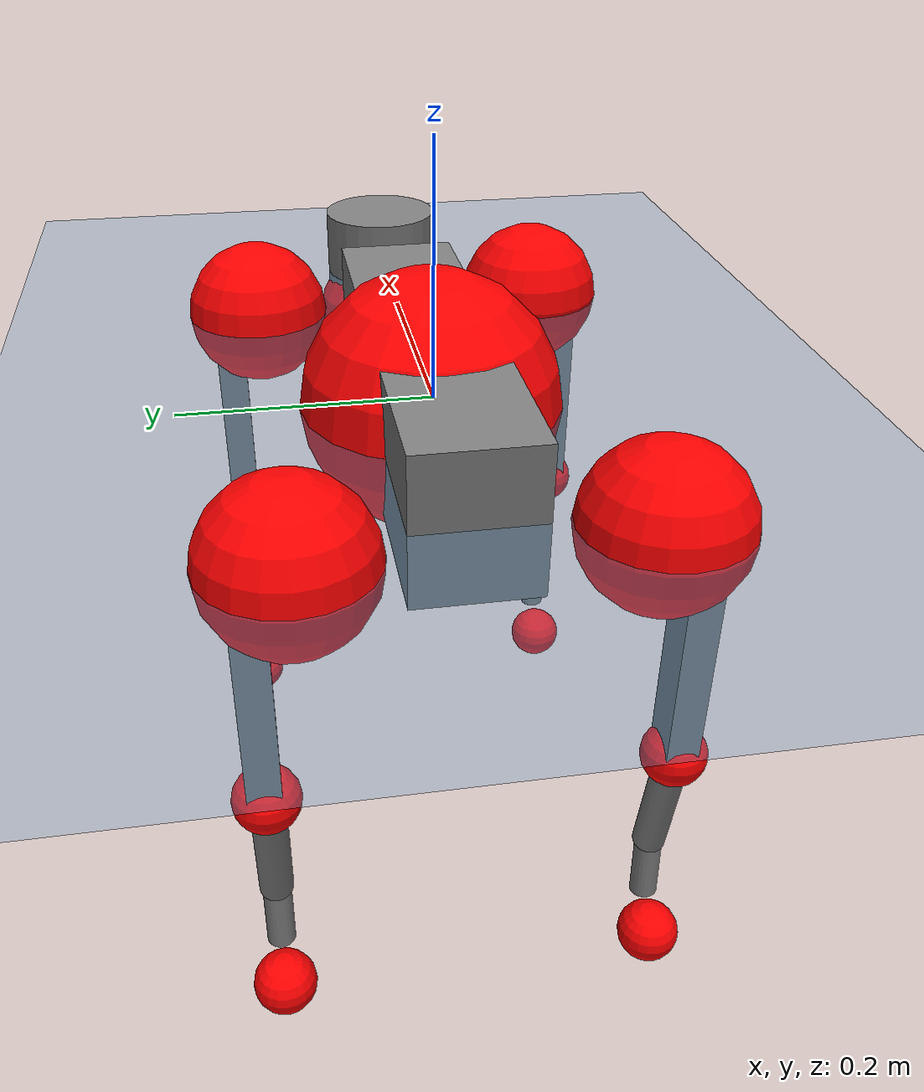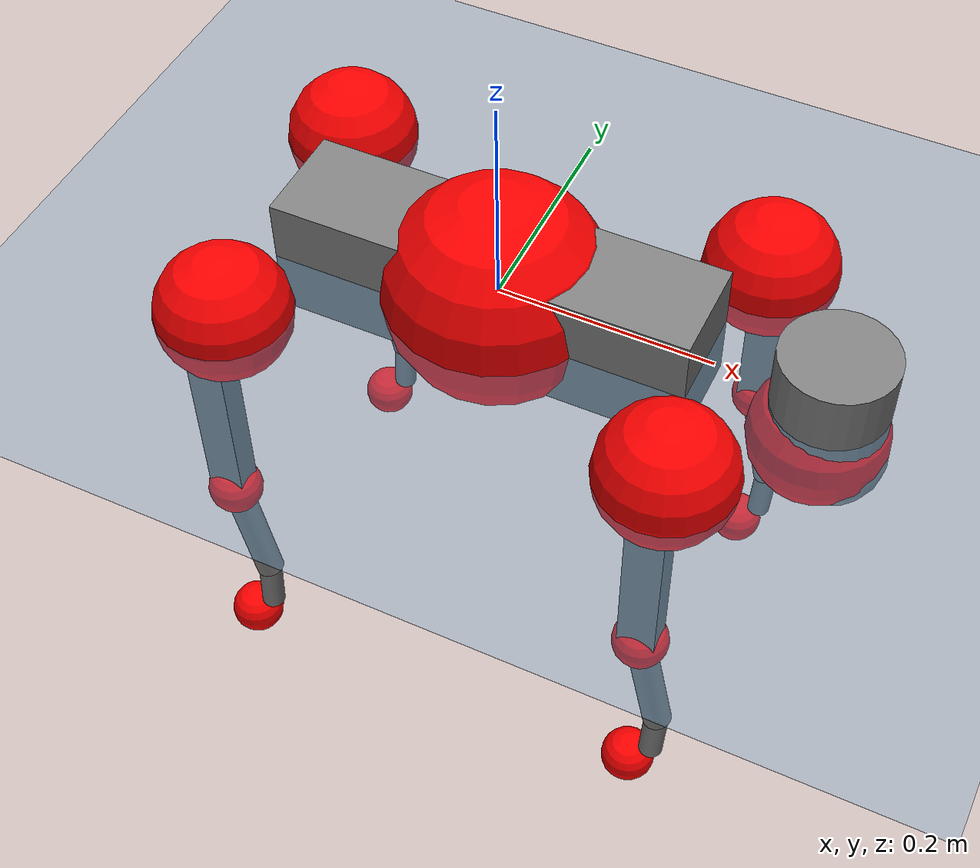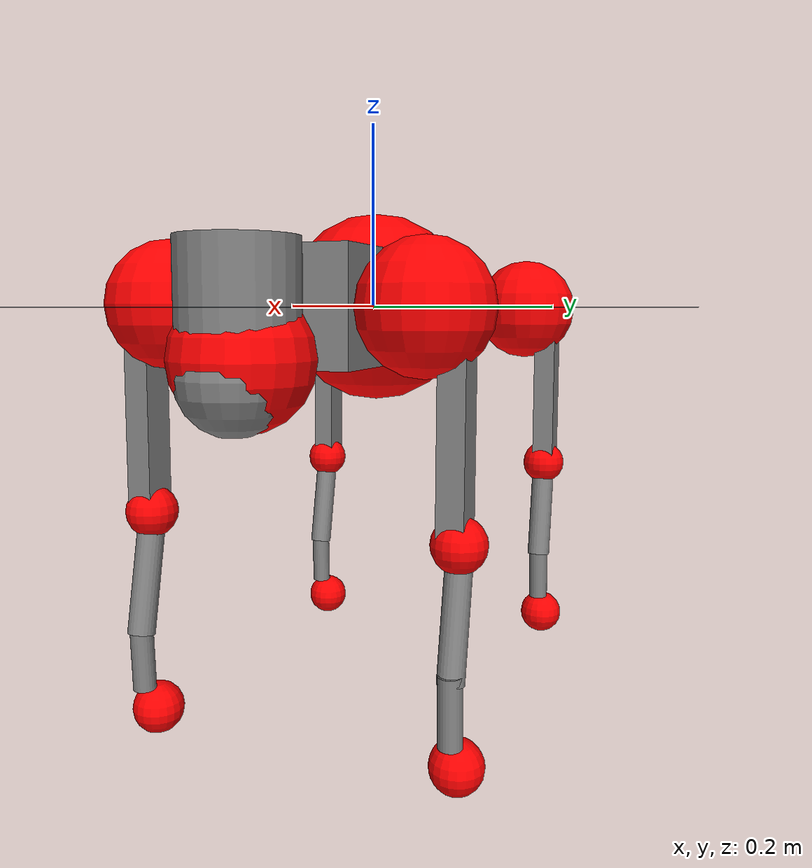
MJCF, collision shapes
<mujoco model="go2">
  <compiler angle="radian" assetdir="assets" balanceinertia="true" inertiafromgeom="false"/>

  <option timestep="0.005" density="1.2" viscosity="2e-05"/>

  <size nkey="1"/>

  <visual>
    <quality shadowsize="8192"/>
    <map shadowclip="0.5"/>
  </visual>

  <default>
    <default class="/">
      <geom contype="0" conaffinity="0" group="1" solref="-1000 -80"/>
      <site size="0.01 0.005 0.005" group="5"/>
      <general forcelimited="true" biastype="affine" gainprm="20" biasprm="0 -20 -0.5"/>
      <default class="go2">
        <joint armature="0.01" damping="0.01" frictionloss="0.2"/>
        <geom condim="1" margin="0.001"/>
        <default class="visual">
          <geom type="mesh" group="2"/>
        </default>
        <default class="collision">
          <geom group="3"/>
          <default class="foot">
            <geom size="0.022 0 0" condim="6" priority="1" friction="0.8 0.02 0.01" solimp="0.015 1 0.022"/>
          </default>
        </default>
        <default class="reward_collision_sphere">
          <geom group="5" rgba="1 0 0 1"/>
        </default>
      </default>
    </default>
  </default>

  <asset>
    <texture type="skybox" colorspace="auto" name="//unnamed_texture_0" builtin="gradient" rgb1="0.95 0.95 0.95" rgb2="0.95 0.95 0.95" width="100" height="600"/>
    <texture type="2d" colorspace="auto" name="texplane" builtin="checker" rgb1="0.345 0.575 0.748" rgb2="0.345 0.575 0.748" markrgb="1 1 1" width="512" height="512"/>
    <material name="MatPlane" class="/" texture="texplane" texuniform="true" texrepeat="2 2" specular="0.9"/>
    <material name="metal" class="/" rgba="0.9 0.95 0.95 1"/>
    <material name="black" class="/" rgba="0 0 0 1"/>
    <material name="white" class="/"/>
    <material name="gray" class="/" rgba="0.671705 0.692426 0.77427 1"/>
    <mesh name="base_0" class="/" file="base_0.obj"/>
    <mesh name="base_1" class="/" file="base_1.obj"/>
    <mesh name="base_2" class="/" file="base_2.obj"/>
    <mesh name="base_3" class="/" file="base_3.obj"/>
    <mesh name="base_4" class="/" file="base_4.obj"/>
    <mesh name="hip_0" class="/" file="hip_0.obj"/>
    <mesh name="hip_1" class="/" file="hip_1.obj"/>
    <mesh name="thigh_0" class="/" file="thigh_0.obj"/>
    <mesh name="thigh_1" class="/" file="thigh_1.obj"/>
    <mesh name="thigh_mirror_0" class="/" file="thigh_mirror_0.obj"/>
    <mesh name="thigh_mirror_1" class="/" file="thigh_mirror_1.obj"/>
    <mesh name="calf_0" class="/" file="calf_0.obj"/>
    <mesh name="calf_1" class="/" file="calf_1.obj"/>
    <mesh name="calf_mirror_0" class="/" file="calf_mirror_0.obj"/>
    <mesh name="calf_mirror_1" class="/" file="calf_mirror_1.obj"/>
    <mesh name="foot" class="/" file="foot.obj"/>
  </asset>

  <worldbody>
    <geom name="floor" class="/" size="100 100 0.125" type="plane" group="0" material="MatPlane"/>
    <light name="toplight_shadow" class="/" pos="0 0 5" dir="0.0990148 0.0990148 -0.990148" type="directional" ambient="0.04 0.04 0.04" diffuse="0.55 0.55 0.55" specular="0.12 0.12 0.12"/>
    <light name="toplight_fill" class="/" pos="0 0 5" dir="0.0990148 0.0990148 -0.990148" type="directional" castshadow="false" ambient="0.04 0.04 0.04" diffuse="0.3 0.3 0.3" specular="0.08 0.08 0.08"/>
    <body name="trunk" childclass="go2" pos="-0.00203483 0.00238883 -0.000617475" quat="0.999999 -0.000923659 -0.000833896 -0.000124072">
      <inertial pos="0.0228345 -0.00122424 -0.0052695" quat="0.00112782 0.718653 -0.00378865 0.695357" mass="7.78322" diaginertia="0.142062 0.136564 0.0194733"/>
      <joint name="//unnamed_joint_0" type="free" armature="0" damping="0" frictionloss="0"/>
      <geom name="//unnamed_geom_1" class="visual" material="black" mesh="base_0"/>
      <geom name="//unnamed_geom_2" class="visual" material="black" mesh="base_1"/>
      <geom name="//unnamed_geom_3" class="visual" material="black" mesh="base_2"/>
      <geom name="//unnamed_geom_4" class="visual" material="white" mesh="base_3"/>
      <geom name="//unnamed_geom_5" class="visual" material="gray" mesh="base_4"/>
      <geom name="trunk_1" class="collision" size="0.19398 0.0482115 0.058782" type="box"/>
      <geom name="trunk_2" class="collision" size="0.0515631 0.0464068" pos="0.30407 0 0.00957318" type="cylinder"/>
      <geom name="trunk_3" class="collision" size="0.0484693" pos="0.312606 0 -0.0574391"/>
      <geom name="//unnamed_geom_9" class="reward_collision_sphere" size="0.103126"/>
      <geom name="//unnamed_geom_10" class="reward_collision_sphere" size="0.0618757" pos="0.298736 0 -0.0430793"/>
      <site name="imu" pos="-0.0144177 -0.00852761 0.0572512" size="0.0103126"/>
      <camera name="track" pos="0 -2.13911 0" quat="0.707107 0.707107 0 0" mode="trackcom"/>
      <camera name="ego_camera" pos="0.332877 0 0.0430793" quat="-0.5 -0.5 0.5 0.5"/>
      <body name="FL_hip" pos="0.206438 0.0508615 -0.00036952" quat="1 0.000405411 -0.000341351 0.000544553">
        <inertial pos="-0.00301697 1.81485e-05 0.000265373" quat="0.498608 0.497064 0.503951 0.500351" mass="0.723378" diaginertia="0.0011896 0.000836089 0.000379751"/>
        <joint name="FL_hip_joint" pos="0 0 0" axis="0.99972 0.000509573 0.023647" stiffness="0.0174602" range="-1.06284 1.04639" armature="0.0120264" damping="0.0165285" frictionloss="0.225744"/>
        <geom name="//unnamed_geom_11" class="visual" material="metal" mesh="hip_0"/>
        <geom name="//unnamed_geom_12" class="visual" material="gray" mesh="hip_1"/>
        <geom name="//unnamed_geom_13" class="collision" size="0.0474381 0.0206252" pos="0 0.0855645 0" quat="0.707107 0.707107 0 0" type="cylinder"/>
        <geom name="//unnamed_geom_14" class="reward_collision_sphere" size="0.0618757" pos="0 0.0748689 0"/>
        <body name="FL_thigh" pos="-0.000913967 0.103288 -0.000478958" quat="0.999999 -0.00102623 -1.59692e-05 0.000245579">
          <inertial pos="-0.00507993 -0.0240751 -0.0274909" quat="0.832323 0.0867094 -0.0281187 0.546744" mass="1.22492" diaginertia="0.00791796 0.00794047 0.000688187"/>
          <joint name="FL_thigh_joint" pos="0 0 0" axis="0.00345105 0.999976 0.00608256" stiffness="8.39463e-05" range="-1.52508 3.48521" armature="0.0096783" damping="0" frictionloss="0.192879"/>
          <geom name="//unnamed_geom_15" class="visual" material="metal" mesh="thigh_0"/>
          <geom name="//unnamed_geom_16" class="visual" material="gray" mesh="thigh_1"/>
          <geom name="//unnamed_geom_17" class="collision" size="0.109829 0.012633 0.0175315" pos="0 0 -0.101954" quat="0.707107 0 0.707107 0" type="box"/>
          <body name="FL_calf" pos="-0.00043305 0.00392256 -0.204585" quat="1 -2.76512e-05 8.06409e-05 -6.15681e-05">
            <inertial pos="0.008527 -0.00289067 -0.134795" quat="0.720182 0.00427289 -0.00291723 0.693766" mass="0.271836" diaginertia="0.00209687 0.00205749 4.40128e-05"/>
            <joint name="FL_calf_joint" pos="0 0 0" axis="-0.00277499 0.999978 0.00597226" stiffness="0.0112492" range="-2.73342 -0.873745" armature="0.00983604" damping="0.00745257" frictionloss="0.217559"/>
            <geom name="//unnamed_geom_18" class="visual" material="gray" mesh="calf_0"/>
            <geom name="//unnamed_geom_19" class="visual" material="black" mesh="calf_1"/>
            <geom name="FL_calf0" class="collision" size="0.0123751 0.0618757" pos="0.00853531 0 -0.0574391" quat="0.994493 0 -0.104807 0" type="cylinder"/>
            <geom name="//unnamed_geom_21" class="collision" size="0.0113439 0.033516" pos="0.0213383 0 -0.141683" quat="0.999688 0 0.0249974 0" type="cylinder"/>
            <geom name="//unnamed_geom_22" class="visual" pos="0 0 -0.203909" quat="1 0 0 0" material="black" mesh="foot"/>
            <geom name="FL_foot" class="foot" size="0.0220733" pos="-0.00213383 0 -0.203909"/>
            <geom name="//unnamed_geom_24" class="reward_collision_sphere" size="0.0257816"/>
            <geom name="//unnamed_geom_25" class="reward_collision_sphere" size="0.0257816" pos="-0.00213383 0 -0.203909"/>
            <site name="FL_foot" class="foot" pos="-0.00213383 0 -0.203909" size="0.0103126"/>
          </body>
        </body>
      </body>
      <body name="FR_hip" pos="0.2102 -0.0535618 0.00191576" quat="1 -0.000470065 3.68561e-05 3.47417e-06">
        <inertial pos="-0.00939227 0.000546556 0.00318391" quat="0.497163 0.50837 0.500885 0.493461" mass="0.730737" diaginertia="0.00116987 0.000795634 0.000369644"/>
        <joint name="FR_hip_joint" pos="0 0 0" axis="0.999955 -0.00243007 0.00920261" stiffness="0.0101437" range="-0.994168 1.07543" armature="0.00995169" damping="0.00446333" frictionloss="0.219015"/>
        <geom name="//unnamed_geom_26" class="visual" pos="0 9.77769e-10 4.19385e-08" quat="4.63268e-05 1 0 0" material="metal" mesh="hip_0"/>
        <geom name="//unnamed_geom_27" class="visual" pos="0 1.58508e-09 -1.0373e-07" quat="4.63268e-05 1 0 0" material="gray" mesh="hip_1"/>
        <geom name="//unnamed_geom_28" class="collision" size="0.0474381 0.0206252" pos="0 -0.0855645 0" quat="0.707107 0.707107 0 0" type="cylinder"/>
        <geom name="//unnamed_geom_29" class="reward_collision_sphere" size="0.0618757" pos="0 -0.0748689 0"/>
        <body name="FR_thigh" pos="0.00127357 -0.104392 0.0013936" quat="1 -1.35851e-05 -6.56974e-05 -4.34779e-05">
          <inertial pos="-0.00572362 0.0192675 -0.028717" quat="0.551988 -0.0204559 0.0843445 0.829323" mass="1.30298" diaginertia="0.00822298 0.00864546 0.000729525"/>
          <joint name="FR_thigh_joint" pos="0 0 0" axis="-1.63439e-05 -1 0.000187954" stiffness="0.0104159" range="-3.52321 1.60752" armature="0.00886404" damping="0.0159357" frictionloss="0.229779"/>
          <geom name="//unnamed_geom_30" class="visual" material="metal" mesh="thigh_mirror_0"/>
          <geom name="//unnamed_geom_31" class="visual" material="gray" mesh="thigh_mirror_1"/>
          <geom name="//unnamed_geom_32" class="collision" size="0.109829 0.012633 0.0175315" pos="0 0 -0.101954" quat="0.707107 0 0.707107 0" type="box"/>
          <body name="FR_calf" pos="-0.000170722 0.0022034 -0.204942" quat="0.999998 0.00126418 -0.00116607 0.000685636">
            <inertial pos="0.00194393 -4.0803e-05 -0.13657" quat="0.699223 -0.0110646 0.00762359 0.714777" mass="0.262599" diaginertia="0.00205532 0.00196161 3.97956e-05"/>
            <joint name="FR_calf_joint" pos="0 0 0" axis="-0.00640667 -0.999954 0.00720656" range="0.898139 2.71185" armature="0.011264" damping="0" frictionloss="0.187458"/>
            <geom name="//unnamed_geom_33" class="visual" material="gray" mesh="calf_mirror_0"/>
            <geom name="//unnamed_geom_34" class="visual" material="black" mesh="calf_mirror_1"/>
            <geom name="FR_calf0" class="collision" size="0.0134064 0.0618757" pos="0.0106691 0 -0.0574391" quat="0.995004 0 -0.0998334 0" type="cylinder"/>
            <geom name="//unnamed_geom_36" class="collision" size="0.0113439 0.033516" pos="0.0213383 0 -0.141683" quat="0.999688 0 0.0249974 0" type="cylinder"/>
            <geom name="//unnamed_geom_37" class="visual" pos="0 0 -0.203909" quat="1 0 0 0" material="black" mesh="foot"/>
            <geom name="FR_foot" class="foot" size="0.0202147" pos="-0.00213383 0 -0.203909"/>
            <geom name="//unnamed_geom_39" class="reward_collision_sphere" size="0.0257816"/>
            <geom name="//unnamed_geom_40" class="reward_collision_sphere" size="0.0257816" pos="-0.00213383 0 -0.203909"/>
            <site name="FR_foot" class="foot" pos="-0.00213383 0 -0.203909" size="0.0103126"/>
          </body>
        </body>
      </body>
      <body name="RL_hip" pos="-0.211457 0.0508478 -0.00169622" quat="1 0.000409807 0.000560202 0.000211303">
        <inertial pos="0.00277416 0.00643603 -0.000892015" quat="0.509621 0.496524 0.500582 0.49312" mass="0.732525" diaginertia="0.00119387 0.000843213 0.000396735"/>
        <joint name="RL_hip_joint" pos="0 0 0" axis="-0.999952 0.00494069 -0.00842362" range="-1.0413 1.09592" armature="0.0102958" damping="0.00108052" frictionloss="0.180134"/>
        <geom name="//unnamed_geom_41" class="visual" pos="-9.5475e-10 0 -1.87153e-07" quat="4.63268e-05 0 1 0" material="metal" mesh="hip_0"/>
        <geom name="//unnamed_geom_42" class="visual" pos="-1.54776e-09 0 -1.65978e-07" quat="4.63268e-05 0 1 0" material="gray" mesh="hip_1"/>
        <geom name="//unnamed_geom_43" class="collision" size="0.0474381 0.0206252" pos="0 0.0855645 0" quat="0.707107 0.707107 0 0" type="cylinder"/>
        <geom name="//unnamed_geom_44" class="reward_collision_sphere" size="0.0618757" pos="0 0.0748689 0"/>
        <body name="RL_thigh" pos="0.0013229 0.103908 0.000726449" quat="0.999999 0.00117576 -0.000157603 0.000405653">
          <inertial pos="-0.00167066 -0.0272023 -0.0311685" quat="0.829813 0.0837015 -0.0222816 0.551279" mass="1.30127" diaginertia="0.00818095 0.00821682 0.000743283"/>
          <joint name="RL_thigh_joint" pos="0 0 0" axis="-0.00793675 0.999942 -0.0073396" stiffness="0.00739038" range="-0.516508 4.55964" armature="0.00886163" damping="0.0138368" frictionloss="0.192649"/>
          <geom name="//unnamed_geom_45" class="visual" material="metal" mesh="thigh_0"/>
          <geom name="//unnamed_geom_46" class="visual" material="gray" mesh="thigh_1"/>
          <geom name="//unnamed_geom_47" class="collision" size="0.109829 0.012633 0.0175315" pos="0 0 -0.101954" quat="0.707107 0 0.707107 0" type="box"/>
          <body name="RL_calf" pos="-0.000525537 -0.00140016 -0.2003" quat="0.999998 -0.00038092 0.00175754 -0.00105078">
            <inertial pos="0.00756632 -0.000924453 -0.140244" quat="0.708489 0.00640315 0.000495132 0.705693" mass="0.269775" diaginertia="0.00205166 0.0019743 4.20248e-05"/>
            <joint name="RL_calf_joint" pos="0 0 0" axis="0.00683821 0.999872 0.0144682" range="-2.67691 -0.849876" armature="0.0115837" damping="0" frictionloss="0.21251"/>
            <geom name="//unnamed_geom_48" class="visual" material="gray" mesh="calf_0"/>
            <geom name="//unnamed_geom_49" class="visual" material="black" mesh="calf_1"/>
            <geom name="RL_calf0" class="collision" size="0.0134064 0.0618757" pos="0.0106691 0 -0.0574391" quat="0.995004 0 -0.0998334 0" type="cylinder"/>
            <geom name="//unnamed_geom_51" class="collision" size="0.0113439 0.033516" pos="0.0213383 0 -0.141683" quat="0.999688 0 0.0249974 0" type="cylinder"/>
            <geom name="//unnamed_geom_52" class="visual" pos="0 0 -0.203909" quat="1 0 0 0" material="black" mesh="foot"/>
            <geom name="RL_foot" class="foot" size="0.0235077" pos="-0.00213383 0 -0.203909"/>
            <geom name="//unnamed_geom_54" class="reward_collision_sphere" size="0.0257816"/>
            <geom name="//unnamed_geom_55" class="reward_collision_sphere" size="0.0257816" pos="-0.00213383 0 -0.203909"/>
            <site name="RL_foot" class="foot" pos="-0.00213383 0 -0.203909" size="0.0103126"/>
          </body>
        </body>
      </body>
      <body name="RR_hip" pos="-0.202767 -0.0474639 -0.0032729" quat="0.999999 -0.000806857 -0.00016829 -0.000966329">
        <inertial pos="0.0058376 -0.000349951 -0.000935627" quat="0.509146 0.495103 0.501934 0.493666" mass="0.726502" diaginertia="0.00120822 0.000818225 0.000379731"/>
        <joint name="RR_hip_joint" pos="0 0 0" axis="-0.999839 -0.0169585 0.00589919" range="-1.04471 1.10108" armature="0.00909838" damping="0.0171179" frictionloss="0.199332"/>
        <geom name="//unnamed_geom_56" class="visual" pos="9.54842e-10 9.77769e-10 -2.29092e-07" quat="2.14617e-09 4.63268e-05 4.63268e-05 -1" material="metal" mesh="hip_0"/>
        <geom name="//unnamed_geom_57" class="visual" pos="1.54754e-09 1.58508e-09 -6.22481e-08" quat="2.14617e-09 4.63268e-05 4.63268e-05 -1" material="gray" mesh="hip_1"/>
        <geom name="//unnamed_geom_58" class="collision" size="0.0474381 0.0206252" pos="0 -0.0855645 0" quat="0.707107 0.707107 0 0" type="cylinder"/>
        <geom name="//unnamed_geom_59" class="reward_collision_sphere" size="0.0618757" pos="0 -0.0748689 0"/>
        <body name="RR_thigh" pos="-0.000571693 -0.104908 -0.00279677" quat="0.999999 -0.00123862 -0.000278463 -0.000234572">
          <inertial pos="-0.00133263 0.0234965 -0.0288076" quat="0.534404 -0.0151744 0.0873879 0.840562" mass="1.2109" diaginertia="0.00814616 0.007973 0.000660984"/>
          <joint name="RR_thigh_joint" pos="0 0 0" axis="-0.0154981 -0.999808 -0.012017" range="-4.55352 0.573678" armature="0.00971365" damping="0.0181489" frictionloss="0.187514"/>
          <geom name="//unnamed_geom_60" class="visual" material="metal" mesh="thigh_mirror_0"/>
          <geom name="//unnamed_geom_61" class="visual" material="gray" mesh="thigh_mirror_1"/>
          <geom name="//unnamed_geom_62" class="collision" size="0.109829 0.012633 0.0175315" pos="0 0 -0.101954" quat="0.707107 0 0.707107 0" type="box"/>
          <body name="RR_calf" pos="0.00161267 -0.000975589 -0.206543" quat="1 -0.000105302 -7.34981e-05 -8.03934e-06">
            <inertial pos="0.00857892 0.00438521 -0.138444" quat="0.703451 -0.00556616 5.9672e-05 0.710722" mass="0.256707" diaginertia="0.00201843 0.00198005 4.20384e-05"/>
            <joint name="RR_calf_joint" pos="0 0 0" axis="4.44829e-05 -0.999999 0.0010093" range="0.787755 2.66349" armature="0.0104975" damping="0.0220856" frictionloss="0.173379"/>
            <geom name="//unnamed_geom_63" class="visual" material="gray" mesh="calf_mirror_0"/>
            <geom name="//unnamed_geom_64" class="visual" material="black" mesh="calf_mirror_1"/>
            <geom name="RR_calf0" class="collision" size="0.0134064 0.0618757" pos="0.0106691 0 -0.0574391" quat="0.995004 0 -0.0998334 0" type="cylinder"/>
            <geom name="//unnamed_geom_66" class="collision" size="0.0113439 0.033516" pos="0.0213383 0 -0.141683" quat="0.999688 0 0.0249974 0" type="cylinder"/>
            <geom name="//unnamed_geom_67" class="visual" pos="0 0 -0.203909" quat="1 0 0 0" material="black" mesh="foot"/>
            <geom name="RR_foot" class="foot" size="0.0196299" pos="-0.00213383 0 -0.203909"/>
            <geom name="//unnamed_geom_69" class="reward_collision_sphere" size="0.0257816"/>
            <geom name="//unnamed_geom_70" class="reward_collision_sphere" size="0.0257816" pos="-0.00213383 0 -0.203909"/>
            <site name="RR_foot" class="foot" pos="-0.00213383 0 -0.203909" size="0.0103126"/>
          </body>
        </body>
      </body>
    </body>
  </worldbody>

  <contact>
    <pair class="/" geom1="floor" geom2="FL_foot" name="//unnamed_contact_0"/>
    <pair class="/" geom1="floor" geom2="FR_foot" name="//unnamed_contact_1"/>
    <pair class="/" geom1="floor" geom2="RL_foot" name="//unnamed_contact_2"/>
    <pair class="/" geom1="floor" geom2="RR_foot" name="//unnamed_contact_3"/>
  </contact>

  <actuator>
    <general name="FL_hip" class="/" joint="FL_hip_joint" forcerange="-24.3707 24.3707" gainprm="20.5263" biasprm="0 -20.5263 -0.548747"/>
    <general name="FL_thigh" class="/" joint="FL_thigh_joint" forcerange="-25.642 25.642" gainprm="20.5263" biasprm="0 -20.5263 -0.548747"/>
    <general name="FL_calf" class="/" joint="FL_calf_joint" forcerange="-50.492 50.492" gainprm="20.5263" biasprm="0 -20.5263 -0.548747"/>
    <general name="FR_hip" class="/" joint="FR_hip_joint" forcerange="-24.6735 24.6735" gainprm="20.5263" biasprm="0 -20.5263 -0.548747"/>
    <general name="FR_thigh" class="/" joint="FR_thigh_joint" forcerange="-25.6062 25.6062" gainprm="20.5263" biasprm="0 -20.5263 -0.548747"/>
    <general name="FR_calf" class="/" joint="FR_calf_joint" forcerange="-47.9089 47.9089" gainprm="20.5263" biasprm="0 -20.5263 -0.548747"/>
    <general name="RL_hip" class="/" joint="RL_hip_joint" forcerange="-24.5502 24.5502" gainprm="20.5263" biasprm="0 -20.5263 -0.548747"/>
    <general name="RL_thigh" class="/" joint="RL_thigh_joint" forcerange="-25.2329 25.2329" gainprm="20.5263" biasprm="0 -20.5263 -0.548747"/>
    <general name="RL_calf" class="/" joint="RL_calf_joint" forcerange="-44.0533 44.0533" gainprm="20.5263" biasprm="0 -20.5263 -0.548747"/>
    <general name="RR_hip" class="/" joint="RR_hip_joint" forcerange="-24.1331 24.1331" gainprm="20.5263" biasprm="0 -20.5263 -0.548747"/>
    <general name="RR_thigh" class="/" joint="RR_thigh_joint" forcerange="-26.7922 26.7922" gainprm="20.5263" biasprm="0 -20.5263 -0.548747"/>
    <general name="RR_calf" class="/" joint="RR_calf_joint" forcerange="-54.2188 54.2188" gainprm="20.5263" biasprm="0 -20.5263 -0.548747"/>
  </actuator>

  <sensor>
    <gyro site="imu" name="imu_angular_velocity"/>
    <velocimeter site="imu" name="imu_linear_velocity"/>
    <framelinvel objtype="site" objname="FL_foot" name="FL_foot_global_linear_velocity"/>
    <framelinvel objtype="site" objname="FR_foot" name="FR_foot_global_linear_velocity"/>
    <framelinvel objtype="site" objname="RL_foot" name="RL_foot_global_linear_velocity"/>
    <framelinvel objtype="site" objname="RR_foot" name="RR_foot_global_linear_velocity"/>
  </sensor>

  <keyframe>
    <key name="home" qpos="0 0 0.325 1 0 0 0 0.1 0.8 -1.5 -0.1 -0.8 1.5 -0.1 0.8 -1.5 0.1 -0.8 1.5"/>
  </keyframe>
</mujoco>
